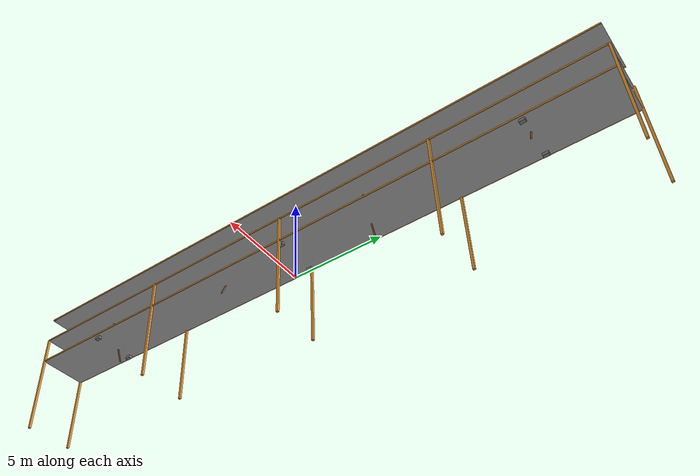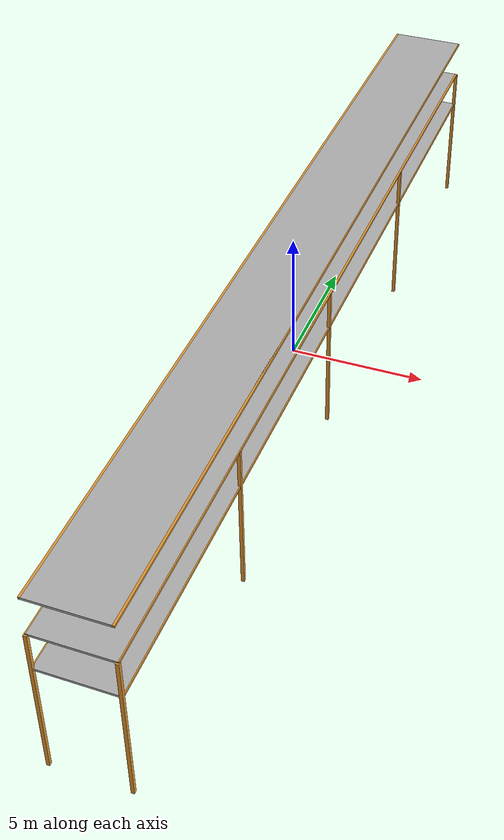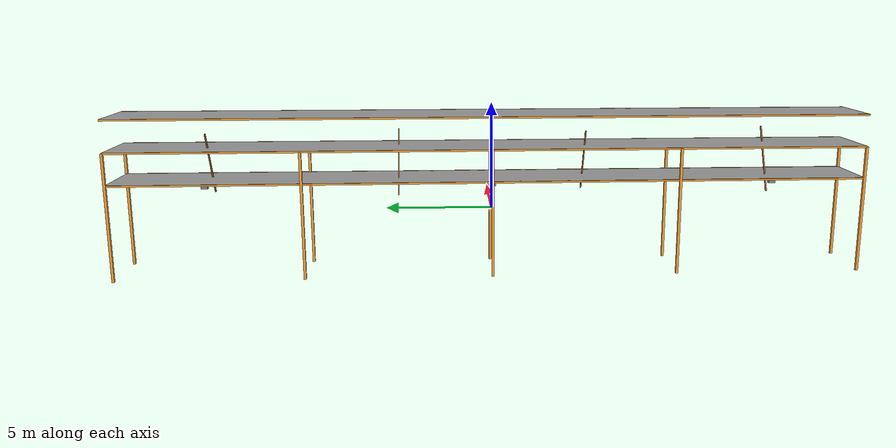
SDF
<?xml version='1.0'?>
<sdf version='1.6'>
  <model name='warehouse_rack'>
    <static>true</static>

    <!-- Industrial Warehouse Rack - Multi-Shelf Design -->
    <!-- Base dimensions: 3m wide x 35m long x 6m tall -->
    <!-- 4 shelf levels with visible support structure -->

    <!-- ========================= VERTICAL POSTS ========================= -->
    <!-- Left side posts -->
    <link name='post_left_1'>
      <pose>-1.4 -17.5 0 0 0 0</pose>
      <collision name='collision'>
        <geometry>
          <box>
            <size>0.12 0.12 6</size>
          </box>
        </geometry>
      </collision>
      <visual name='visual'>
        <geometry>
          <box>
            <size>0.12 0.12 6</size>
          </box>
        </geometry>
        <material>
          <ambient>0.8 0.5 0.1 1</ambient>
          <diffuse>0.9 0.6 0.2 1</diffuse>
        </material>
      </visual>
    </link>

    <link name='post_left_2'>
      <pose>-1.4 -8.75 0 0 0 0</pose>
      <collision name='collision'>
        <geometry>
          <box>
            <size>0.12 0.12 6</size>
          </box>
        </geometry>
      </collision>
      <visual name='visual'>
        <geometry>
          <box>
            <size>0.12 0.12 6</size>
          </box>
        </geometry>
        <material>
          <ambient>0.8 0.5 0.1 1</ambient>
          <diffuse>0.9 0.6 0.2 1</diffuse>
        </material>
      </visual>
    </link>

    <link name='post_left_3'>
      <pose>-1.4 0 0 0 0 0</pose>
      <collision name='collision'>
        <geometry>
          <box>
            <size>0.12 0.12 6</size>
          </box>
        </geometry>
      </collision>
      <visual name='visual'>
        <geometry>
          <box>
            <size>0.12 0.12 6</size>
          </box>
        </geometry>
        <material>
          <ambient>0.8 0.5 0.1 1</ambient>
          <diffuse>0.9 0.6 0.2 1</diffuse>
        </material>
      </visual>
    </link>

    <link name='post_left_4'>
      <pose>-1.4 8.75 0 0 0 0</pose>
      <collision name='collision'>
        <geometry>
          <box>
            <size>0.12 0.12 6</size>
          </box>
        </geometry>
      </collision>
      <visual name='visual'>
        <geometry>
          <box>
            <size>0.12 0.12 6</size>
          </box>
        </geometry>
        <material>
          <ambient>0.8 0.5 0.1 1</ambient>
          <diffuse>0.9 0.6 0.2 1</diffuse>
        </material>
      </visual>
    </link>

    <link name='post_left_5'>
      <pose>-1.4 17.5 0 0 0 0</pose>
      <collision name='collision'>
        <geometry>
          <box>
            <size>0.12 0.12 6</size>
          </box>
        </geometry>
      </collision>
      <visual name='visual'>
        <geometry>
          <box>
            <size>0.12 0.12 6</size>
          </box>
        </geometry>
        <material>
          <ambient>0.8 0.5 0.1 1</ambient>
          <diffuse>0.9 0.6 0.2 1</diffuse>
        </material>
      </visual>
    </link>

    <!-- Right side posts -->
    <link name='post_right_1'>
      <pose>1.4 -17.5 0 0 0 0</pose>
      <collision name='collision'>
        <geometry>
          <box>
            <size>0.12 0.12 6</size>
          </box>
        </geometry>
      </collision>
      <visual name='visual'>
        <geometry>
          <box>
            <size>0.12 0.12 6</size>
          </box>
        </geometry>
        <material>
          <ambient>0.8 0.5 0.1 1</ambient>
          <diffuse>0.9 0.6 0.2 1</diffuse>
        </material>
      </visual>
    </link>

    <link name='post_right_2'>
      <pose>1.4 -8.75 0 0 0 0</pose>
      <collision name='collision'>
        <geometry>
          <box>
            <size>0.12 0.12 6</size>
          </box>
        </geometry>
      </collision>
      <visual name='visual'>
        <geometry>
          <box>
            <size>0.12 0.12 6</size>
          </box>
        </geometry>
        <material>
          <ambient>0.8 0.5 0.1 1</ambient>
          <diffuse>0.9 0.6 0.2 1</diffuse>
        </material>
      </visual>
    </link>

    <link name='post_right_3'>
      <pose>1.4 0 0 0 0 0</pose>
      <collision name='collision'>
        <geometry>
          <box>
            <size>0.12 0.12 6</size>
          </box>
        </geometry>
      </collision>
      <visual name='visual'>
        <geometry>
          <box>
            <size>0.12 0.12 6</size>
          </box>
        </geometry>
        <material>
          <ambient>0.8 0.5 0.1 1</ambient>
          <diffuse>0.9 0.6 0.2 1</diffuse>
        </material>
      </visual>
    </link>

    <link name='post_right_4'>
      <pose>1.4 8.75 0 0 0 0</pose>
      <collision name='collision'>
        <geometry>
          <box>
            <size>0.12 0.12 6</size>
          </box>
        </geometry>
      </collision>
      <visual name='visual'>
        <geometry>
          <box>
            <size>0.12 0.12 6</size>
          </box>
        </geometry>
        <material>
          <ambient>0.8 0.5 0.1 1</ambient>
          <diffuse>0.9 0.6 0.2 1</diffuse>
        </material>
      </visual>
    </link>

    <link name='post_right_5'>
      <pose>1.4 17.5 0 0 0 0</pose>
      <collision name='collision'>
        <geometry>
          <box>
            <size>0.12 0.12 6</size>
          </box>
        </geometry>
      </collision>
      <visual name='visual'>
        <geometry>
          <box>
            <size>0.12 0.12 6</size>
          </box>
        </geometry>
        <material>
          <ambient>0.8 0.5 0.1 1</ambient>
          <diffuse>0.9 0.6 0.2 1</diffuse>
        </material>
      </visual>
    </link>

    <!-- ========================= SHELF LEVELS ========================= -->
    <!-- Level 1 Shelves (1.5m height) -->
    <link name='shelf_level1'>
      <pose>0 0 1.5 0 0 0</pose>
      <collision name='collision'>
        <geometry>
          <box>
            <size>2.8 35 0.08</size>
          </box>
        </geometry>
      </collision>
      <visual name='visual'>
        <geometry>
          <box>
            <size>2.8 35 0.08</size>
          </box>
        </geometry>
        <material>
          <ambient>0.6 0.6 0.6 1</ambient>
          <diffuse>0.7 0.7 0.7 1</diffuse>
        </material>
      </visual>
    </link>

    <!-- Level 2 Shelves (3m height) -->
    <link name='shelf_level2'>
      <pose>0 0 3 0 0 0</pose>
      <collision name='collision'>
        <geometry>
          <box>
            <size>2.8 35 0.08</size>
          </box>
        </geometry>
      </collision>
      <visual name='visual'>
        <geometry>
          <box>
            <size>2.8 35 0.08</size>
          </box>
        </geometry>
        <material>
          <ambient>0.6 0.6 0.6 1</ambient>
          <diffuse>0.7 0.7 0.7 1</diffuse>
        </material>
      </visual>
    </link>

    <!-- Level 3 Shelves (4.5m height) -->
    <link name='shelf_level3'>
      <pose>0 0 4.5 0 0 0</pose>
      <collision name='collision'>
        <geometry>
          <box>
            <size>2.8 35 0.08</size>
          </box>
        </geometry>
      </collision>
      <visual name='visual'>
        <geometry>
          <box>
            <size>2.8 35 0.08</size>
          </box>
        </geometry>
        <material>
          <ambient>0.6 0.6 0.6 1</ambient>
          <diffuse>0.7 0.7 0.7 1</diffuse>
        </material>
      </visual>
    </link>

    <!-- ========================= HORIZONTAL SUPPORT BEAMS ========================= -->
    <!-- Front horizontal beams connecting posts -->
    <link name='beam_front_1'>
      <pose>-1.4 0 1.5 0 0 1.57079</pose>
      <visual name='visual'>
        <geometry>
          <box>
            <size>35 0.08 0.08</size>
          </box>
        </geometry>
        <material>
          <ambient>0.8 0.5 0.1 1</ambient>
          <diffuse>0.9 0.6 0.2 1</diffuse>
        </material>
      </visual>
    </link>

    <link name='beam_front_2'>
      <pose>-1.4 0 3 0 0 1.57079</pose>
      <visual name='visual'>
        <geometry>
          <box>
            <size>35 0.08 0.08</size>
          </box>
        </geometry>
        <material>
          <ambient>0.8 0.5 0.1 1</ambient>
          <diffuse>0.9 0.6 0.2 1</diffuse>
        </material>
      </visual>
    </link>

    <link name='beam_front_3'>
      <pose>-1.4 0 4.5 0 0 1.57079</pose>
      <visual name='visual'>
        <geometry>
          <box>
            <size>35 0.08 0.08</size>
          </box>
        </geometry>
        <material>
          <ambient>0.8 0.5 0.1 1</ambient>
          <diffuse>0.9 0.6 0.2 1</diffuse>
        </material>
      </visual>
    </link>

    <!-- Back horizontal beams -->
    <link name='beam_back_1'>
      <pose>1.4 0 1.5 0 0 1.57079</pose>
      <visual name='visual'>
        <geometry>
          <box>
            <size>35 0.08 0.08</size>
          </box>
        </geometry>
        <material>
          <ambient>0.8 0.5 0.1 1</ambient>
          <diffuse>0.9 0.6 0.2 1</diffuse>
        </material>
      </visual>
    </link>

    <link name='beam_back_2'>
      <pose>1.4 0 3 0 0 1.57079</pose>
      <visual name='visual'>
        <geometry>
          <box>
            <size>35 0.08 0.08</size>
          </box>
        </geometry>
        <material>
          <ambient>0.8 0.5 0.1 1</ambient>
          <diffuse>0.9 0.6 0.2 1</diffuse>
        </material>
      </visual>
    </link>

    <link name='beam_back_3'>
      <pose>1.4 0 4.5 0 0 1.57079</pose>
      <visual name='visual'>
        <geometry>
          <box>
            <size>35 0.08 0.08</size>
          </box>
        </geometry>
        <material>
          <ambient>0.8 0.5 0.1 1</ambient>
          <diffuse>0.9 0.6 0.2 1</diffuse>
        </material>
      </visual>
    </link>

    <!-- ========================= CROSS BRACING ========================= -->
    <!-- Diagonal braces for structural stability -->
    <link name='brace_1'>
      <pose>0 -13.125 2.25 0 0.3927 0</pose>
      <visual name='visual'>
        <geometry>
          <box>
            <size>0.06 0.06 3.2</size>
          </box>
        </geometry>
        <material>
          <ambient>0.5 0.3 0.1 1</ambient>
          <diffuse>0.6 0.4 0.2 1</diffuse>
        </material>
      </visual>
    </link>

    <link name='brace_2'>
      <pose>0 -4.375 2.25 0 -0.3927 0</pose>
      <visual name='visual'>
        <geometry>
          <box>
            <size>0.06 0.06 3.2</size>
          </box>
        </geometry>
        <material>
          <ambient>0.5 0.3 0.1 1</ambient>
          <diffuse>0.6 0.4 0.2 1</diffuse>
        </material>
      </visual>
    </link>

    <link name='brace_3'>
      <pose>0 4.375 2.25 0 0.3927 0</pose>
      <visual name='visual'>
        <geometry>
          <box>
            <size>0.06 0.06 3.2</size>
          </box>
        </geometry>
        <material>
          <ambient>0.5 0.3 0.1 1</ambient>
          <diffuse>0.6 0.4 0.2 1</diffuse>
        </material>
      </visual>
    </link>

    <link name='brace_4'>
      <pose>0 13.125 2.25 0 -0.3927 0</pose>
      <visual name='visual'>
        <geometry>
          <box>
            <size>0.06 0.06 3.2</size>
          </box>
        </geometry>
        <material>
          <ambient>0.5 0.3 0.1 1</ambient>
          <diffuse>0.6 0.4 0.2 1</diffuse>
        </material>
      </visual>
    </link>

    <!-- ========================= SHELF SUPPORT BRACKETS ========================= -->
    <!-- Support brackets under each shelf -->
    <link name='bracket_1_left'>
      <pose>-1.2 -13.125 1.4 0 0 0</pose>
      <visual name='visual'>
        <geometry>
          <box>
            <size>0.2 0.3 0.2</size>
          </box>
        </geometry>
        <material>
          <ambient>0.4 0.4 0.4 1</ambient>
          <diffuse>0.5 0.5 0.5 1</diffuse>
        </material>
      </visual>
    </link>

    <link name='bracket_1_right'>
      <pose>1.2 -13.125 1.4 0 0 0</pose>
      <visual name='visual'>
        <geometry>
          <box>
            <size>0.2 0.3 0.2</size>
          </box>
        </geometry>
        <material>
          <ambient>0.4 0.4 0.4 1</ambient>
          <diffuse>0.5 0.5 0.5 1</diffuse>
        </material>
      </visual>
    </link>

    <link name='bracket_2_left'>
      <pose>-1.2 0 1.4 0 0 0</pose>
      <visual name='visual'>
        <geometry>
          <box>
            <size>0.2 0.3 0.2</size>
          </box>
        </geometry>
        <material>
          <ambient>0.4 0.4 0.4 1</ambient>
          <diffuse>0.5 0.5 0.5 1</diffuse>
        </material>
      </visual>
    </link>

    <link name='bracket_2_right'>
      <pose>1.2 0 1.4 0 0 0</pose>
      <visual name='visual'>
        <geometry>
          <box>
            <size>0.2 0.3 0.2</size>
          </box>
        </geometry>
        <material>
          <ambient>0.4 0.4 0.4 1</ambient>
          <diffuse>0.5 0.5 0.5 1</diffuse>
        </material>
      </visual>
    </link>

    <link name='bracket_3_left'>
      <pose>-1.2 13.125 1.4 0 0 0</pose>
      <visual name='visual'>
        <geometry>
          <box>
            <size>0.2 0.3 0.2</size>
          </box>
        </geometry>
        <material>
          <ambient>0.4 0.4 0.4 1</ambient>
          <diffuse>0.5 0.5 0.5 1</diffuse>
        </material>
      </visual>
    </link>

    <link name='bracket_3_right'>
      <pose>1.2 13.125 1.4 0 0 0</pose>
      <visual name='visual'>
        <geometry>
          <box>
            <size>0.2 0.3 0.2</size>
          </box>
        </geometry>
        <material>
          <ambient>0.4 0.4 0.4 1</ambient>
          <diffuse>0.5 0.5 0.5 1</diffuse>
        </material>
      </visual>
    </link>

  </model>
</sdf>
